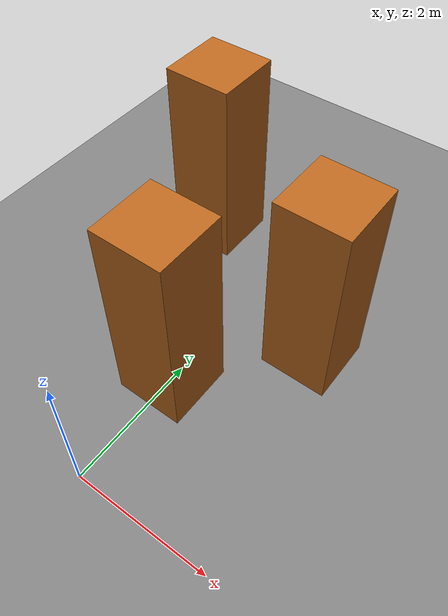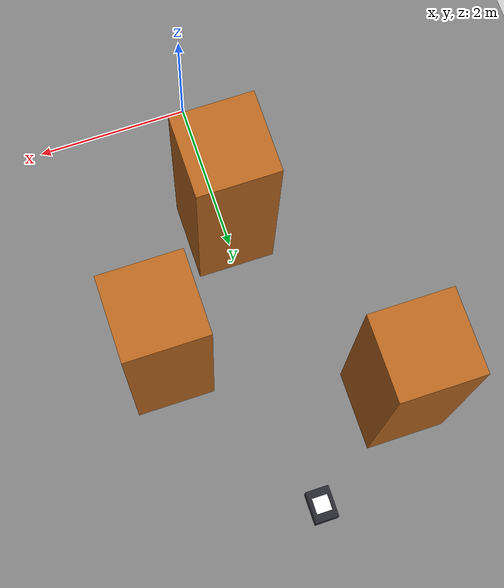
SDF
<?xml version="1.0"?>
<sdf version="1.9">
  <world name="followbox_multi_px4">

    <plugin filename="gz-sim-physics-system"           name="gz::sim::systems::Physics"/>
    <plugin filename="gz-sim-user-commands-system"     name="gz::sim::systems::UserCommands"/>
    <plugin filename="gz-sim-scene-broadcaster-system" name="gz::sim::systems::SceneBroadcaster"/>
    <plugin filename="gz-sim-sensors-system"           name="gz::sim::systems::Sensors">
      <render_engine>ogre2</render_engine>
    </plugin>
    <plugin filename="gz-sim-imu-system"               name="gz::sim::systems::Imu"/>
    <plugin filename="gz-sim-air-pressure-system"      name="gz::sim::systems::AirPressure"/>
    <plugin filename="gz-sim-air-speed-system"         name="gz::sim::systems::AirSpeed"/>
    <plugin filename="gz-sim-altimeter-system"         name="gz::sim::systems::Altimeter"/>
    <plugin filename="gz-sim-magnetometer-system"      name="gz::sim::systems::Magnetometer"/>
    <plugin filename="gz-sim-navsat-system"            name="gz::sim::systems::NavSat"/>
    <plugin filename="gz-sim-forcetorque-system"       name="gz::sim::systems::ForceTorque"/>
    <plugin filename="gz-sim-contact-system"           name="gz::sim::systems::Contact"/>

    <spherical_coordinates>
      <surface_model>EARTH_WGS84</surface_model>
      <world_frame_orientation>ENU</world_frame_orientation>
      <latitude_deg>47.397971057728974</latitude_deg>
      <longitude_deg>8.546163739800146</longitude_deg>
      <elevation>0</elevation>
    </spherical_coordinates>

    <scene>
      <ambient>0.5 0.5 0.5 1</ambient>
      <background>0.7 0.7 0.75 1</background>
      <grid>false</grid>
    </scene>

    <light type="directional" name="sun">
      <cast_shadows>false</cast_shadows>
      <pose>0 0 10 0 0 0</pose>
      <diffuse>1 1 1 1</diffuse>
      <specular>0.3 0.3 0.3 1</specular>
      <direction>0.2 0.2 -1.0</direction>
    </light>

    <model name="ground_plane">
      <static>true</static>
      <link name="link">
        <collision name="col">
          <geometry><plane><normal>0 0 1</normal><size>100 100</size></plane></geometry>
        </collision>
        <visual name="vis">
          <geometry><plane><normal>0 0 1</normal><size>100 100</size></plane></geometry>
          <material><diffuse>0.5 0.5 0.5 1</diffuse><specular>0.1 0.1 0.1 1</specular></material>
        </visual>
      </link>
    </model>

    <!-- crate_a: gz (E=0.0, N=1.8). Straddles east 0 -> blocks the straight line. -->
    <model name="crate_a">
      <static>true</static>
      <pose>0.0 1.8 1.5 0 0 0</pose>
      <link name="link">
        <collision name="col"><geometry><box><size>1.0 1.0 3.0</size></box></geometry></collision>
        <visual name="vis">
          <geometry><box><size>1.0 1.0 3.0</size></box></geometry>
          <material><ambient>0.55 0.27 0.07 1</ambient><diffuse>0.72 0.40 0.12 1</diffuse><specular>0.1 0.1 0.1 1</specular></material>
        </visual>
      </link>
    </model>

    <!-- crate_b: gz (E=1.3, N=3.3). Blocks the east detour lane. -->
    <model name="crate_b">
      <static>true</static>
      <pose>1.3 3.3 1.5 0 0 0</pose>
      <link name="link">
        <collision name="col"><geometry><box><size>1.0 1.0 3.0</size></box></geometry></collision>
        <visual name="vis">
          <geometry><box><size>1.0 1.0 3.0</size></box></geometry>
          <material><ambient>0.55 0.27 0.07 1</ambient><diffuse>0.72 0.40 0.12 1</diffuse><specular>0.1 0.1 0.1 1</specular></material>
        </visual>
      </link>
    </model>

    <!-- crate_c: gz (E=-1.3, N=4.6). Blocks the west lane higher up. -->
    <model name="crate_c">
      <static>true</static>
      <pose>-1.3 4.6 1.5 0 0 0</pose>
      <link name="link">
        <collision name="col"><geometry><box><size>1.0 1.0 3.0</size></box></geometry></collision>
        <visual name="vis">
          <geometry><box><size>1.0 1.0 3.0</size></box></geometry>
          <material><ambient>0.55 0.27 0.07 1</ambient><diffuse>0.72 0.40 0.12 1</diffuse><specular>0.1 0.1 0.1 1</specular></material>
        </visual>
      </link>
    </model>

    <include>
      <uri>model://convoy_robot_7</uri><name>convoy_robot_7</name>
      <pose>0 5.6 0 0 0 1.5708</pose>
    </include>

  </world>
</sdf>

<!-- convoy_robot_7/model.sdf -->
<sdf version="1.9">
  <model name="convoy_robot_7">
    <!-- SIM-3 convoy robot carrying aruco id=7 (20cm). Generated by sim/gen_markers.py. -->
    <link name="base_link">
      <pose>0 0 0.1300 0 0 0</pose>
      <inertial>
        <mass>5.0</mass>
        <inertia><ixx>0.08</ixx><iyy>0.12</iyy><izz>0.15</izz><ixy>0</ixy><ixz>0</ixz><iyz>0</iyz></inertia>
      </inertial>
      <collision name="chassis_col">
        <geometry><box><size>0.4 0.3 0.25</size></box></geometry>
      </collision>
      <visual name="chassis_vis">
        <geometry><box><size>0.4 0.3 0.25</size></box></geometry>
        <material><diffuse>0.15 0.15 0.18 1</diffuse></material>
      </visual>
      <visual name="marker_top">
        <pose>0 0 0.1255 0 0 0</pose>
        <geometry>
          <plane><normal>0 0 1</normal><size>0.2000 0.2000</size></plane>
        </geometry>
        <material>
          <diffuse>1 1 1 1</diffuse>
          <specular>0 0 0 1</specular>
          <pbr>
            <metal>
              <albedo_map>model://convoy_robot_7/materials/textures/convoy_robot_7.png</albedo_map>
              <metalness>0.0</metalness>
              <roughness>1.0</roughness>
            </metal>
          </pbr>
        </material>
      </visual>
    </link>
    <plugin filename="gz-sim-velocity-control-system"
            name="gz::sim::systems::VelocityControl">
      <topic>/model/convoy_robot_7/cmd_vel</topic>
      <!-- hold still (no gravity fall) until the rclpy driver sends cmd_vel;
           linear is body-frame, so constant linear.x + angular.z => a circle. -->
      <initial_linear>0 0 0</initial_linear>
      <initial_angular>0 0 0</initial_angular>
    </plugin>
  </model>
</sdf>
